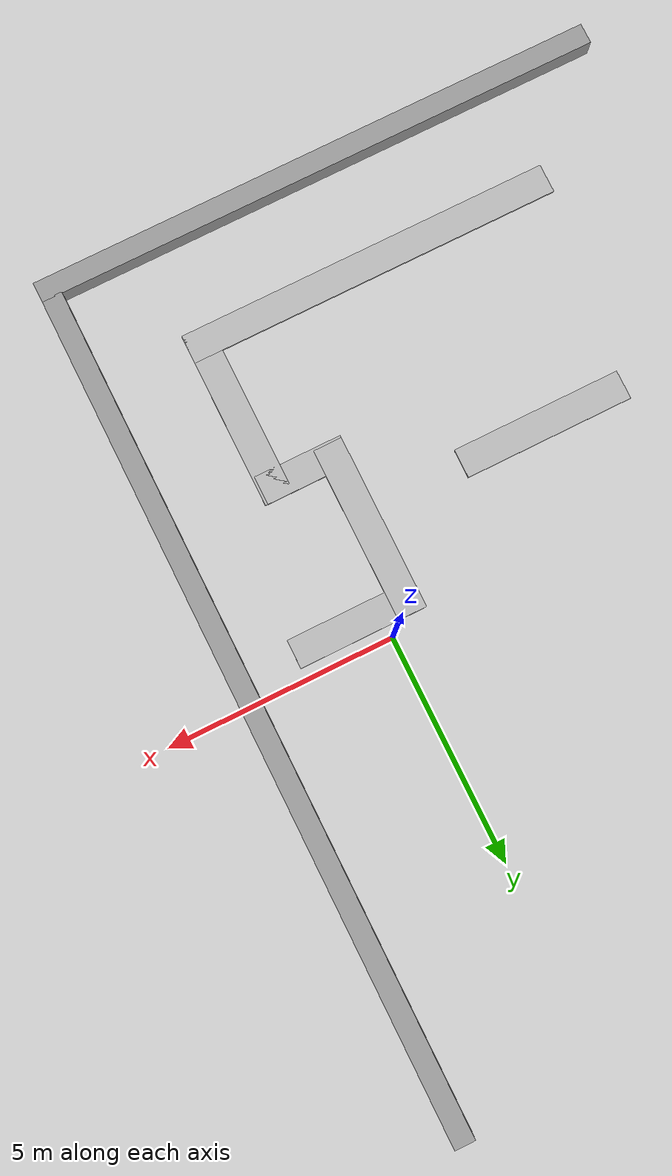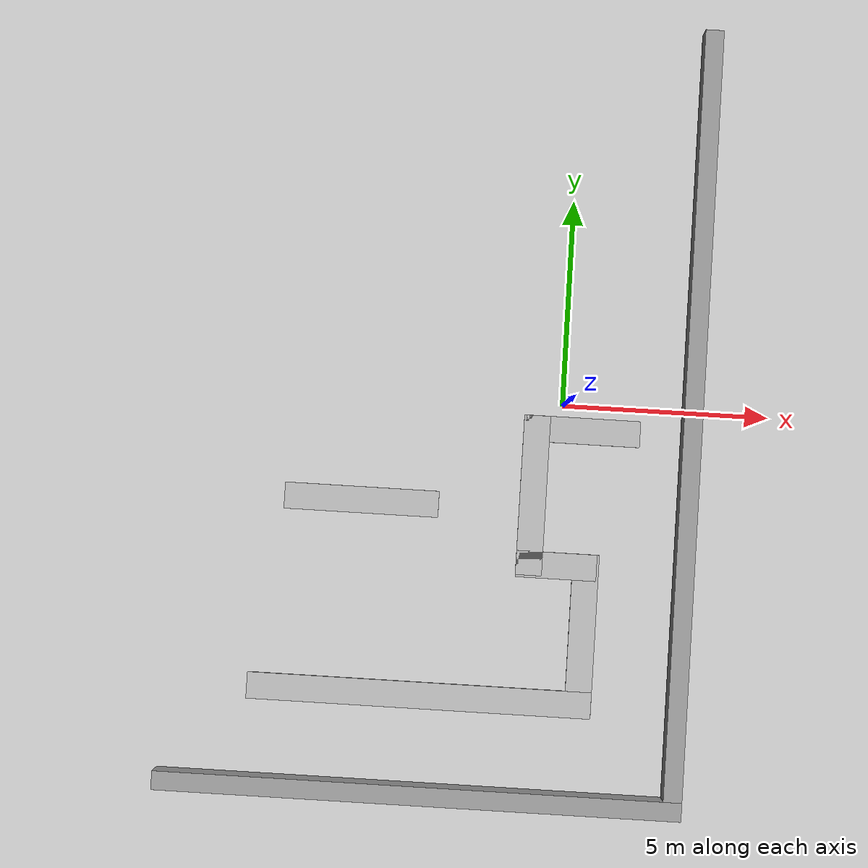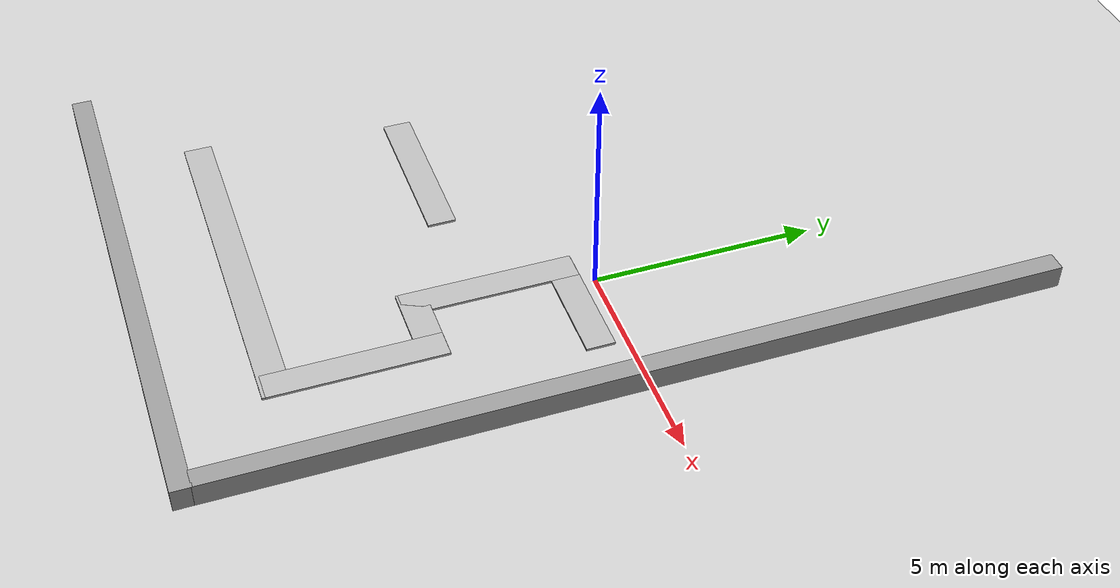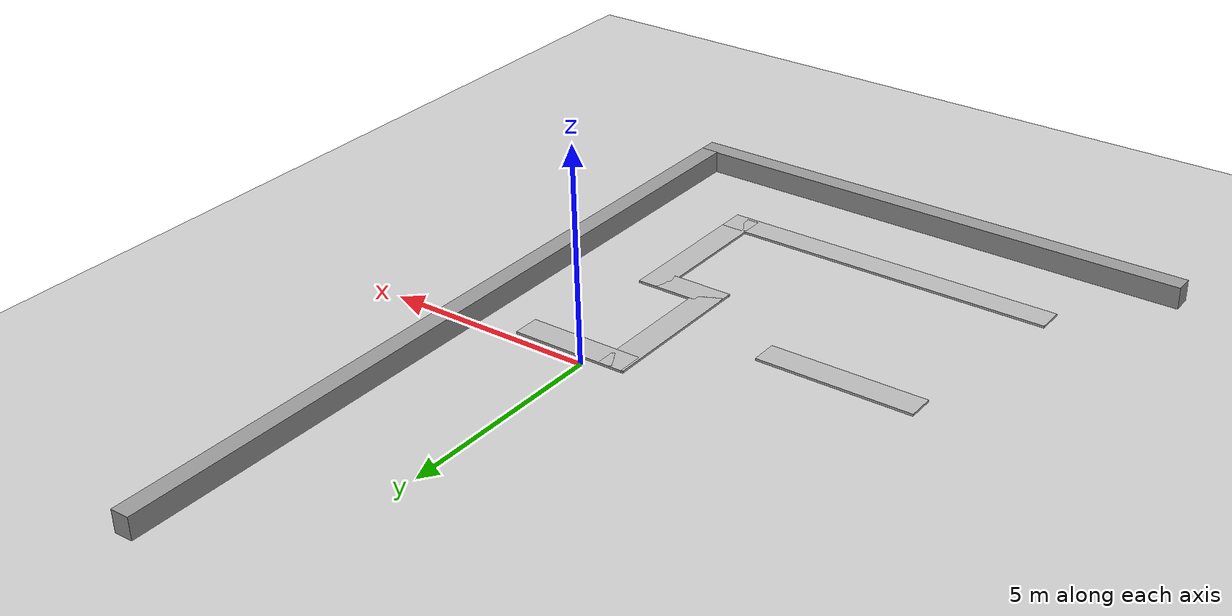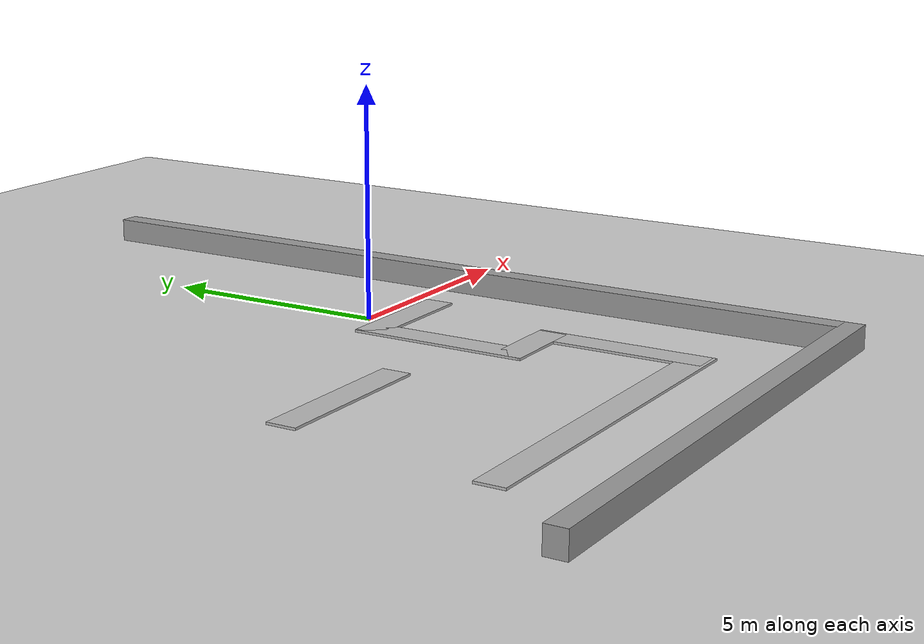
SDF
<sdf version="1.7">
 <world name="default">
  <model name="ground_plane">
   <static>1</static>
   <link name="link">
    <collision name="collision">
     <geometry><plane><normal>0 0 1</normal><size>100 100</size></plane></geometry>
     <surface>
      <contact><collide_bitmask>65535</collide_bitmask></contact>
      <friction><ode><mu>100</mu><mu2>50</mu2></ode></friction>
     </surface>
    </collision>
    <visual name="visual">
     <cast_shadows>0</cast_shadows>
     <geometry><plane><normal>0 0 1</normal><size>100 100</size></plane></geometry>
     <material>
      <script><uri>file://media/materials/scripts/gazebo.material</uri><name>Gazebo/Grey</name></script>
     </material>
    </visual>
   </link>
  </model>
  <model name="unit_box_wall_clone">
   <link name="unit_box::link">
    <inertial>
     <mass>1</mass>
     <inertia>
      <ixx>0.166667</ixx>
      <ixy>0</ixy>
      <ixz>0</ixz>
      <iyy>0.166667</iyy>
      <iyz>0</iyz>
      <izz>0.166667</izz>
     </inertia>
    </inertial>
    <visual name="visual">
     <geometry><box><size>0.446113 18.5982 1</size></box></geometry>
     <material>
      <script><name>Gazebo/Grey</name><uri>file://media/materials/scripts/gazebo.material</uri></script>
      <shader type="pixel"/>
     </material>
    </visual>
    <collision name="collision">
     <geometry><box><size>0.446113 18.5982 1</size></box></geometry>
     <surface>
      <friction>
       <ode><mu>1</mu><mu2>1</mu2><fdir1>0 0 0</fdir1><slip1>0</slip1><slip2>0</slip2></ode>
       <torsional>
        <coefficient>1</coefficient>
        <patch_radius>0</patch_radius>
        <surface_radius>0</surface_radius>
        <use_patch_radius>1</use_patch_radius>
        <ode><slip>0</slip></ode>
       </torsional>
      </friction>
      <bounce><restitution_coefficient>0</restitution_coefficient><threshold>1e+06</threshold></bounce>
      <contact>
       <collide_without_contact>0</collide_without_contact>
       <collide_without_contact_bitmask>1</collide_without_contact_bitmask>
       <collide_bitmask>1</collide_bitmask>
       <ode>
        <soft_cfm>0</soft_cfm>
        <soft_erp>0.2</soft_erp>
        <kp>1e+13</kp>
        <kd>1</kd>
        <max_vel>0.01</max_vel>
        <min_depth>0</min_depth>
       </ode>
       <bullet>
        <split_impulse>1</split_impulse>
        <split_impulse_penetration_threshold>-0.01</split_impulse_penetration_threshold>
        <soft_cfm>0</soft_cfm>
        <soft_erp>0.2</soft_erp>
        <kp>1e+13</kp>
        <kd>1</kd>
       </bullet>
      </contact>
     </surface>
    </collision>
   </link>
   <static>1</static>
   <allow_auto_disable>0</allow_auto_disable>
   <pose>3.13218 0.00569 0 0 -0 0</pose>
  </model>
  <model name="unit_box_wall_clone_0">
   <link name="unit_box::link">
    <inertial>
     <mass>1</mass>
     <inertia>
      <ixx>0.166667</ixx>
      <ixy>0</ixy>
      <ixz>0</ixz>
      <iyy>0.166667</iyy>
      <iyz>0</iyz>
      <izz>0.166667</izz>
     </inertia>
    </inertial>
    <visual name="visual">
     <geometry><box><size>0.446113 12.605 1</size></box></geometry>
     <material>
      <script><name>Gazebo/Grey</name><uri>file://media/materials/scripts/gazebo.material</uri></script>
      <shader type="pixel"/>
     </material>
    </visual>
    <collision name="collision">
     <geometry><box><size>0.446113 12.605 1</size></box></geometry>
     <surface>
      <friction>
       <ode><mu>1</mu><mu2>1</mu2><fdir1>0 0 0</fdir1><slip1>0</slip1><slip2>0</slip2></ode>
       <torsional>
        <coefficient>1</coefficient>
        <patch_radius>0</patch_radius>
        <surface_radius>0</surface_radius>
        <use_patch_radius>1</use_patch_radius>
        <ode><slip>0</slip></ode>
       </torsional>
      </friction>
      <bounce><restitution_coefficient>0</restitution_coefficient><threshold>1e+06</threshold></bounce>
      <contact>
       <collide_without_contact>0</collide_without_contact>
       <collide_without_contact_bitmask>1</collide_without_contact_bitmask>
       <collide_bitmask>1</collide_bitmask>
       <ode>
        <soft_cfm>0</soft_cfm>
        <soft_erp>0.2</soft_erp>
        <kp>1e+13</kp>
        <kd>1</kd>
        <max_vel>0.01</max_vel>
        <min_depth>0</min_depth>
       </ode>
       <bullet>
        <split_impulse>1</split_impulse>
        <split_impulse_penetration_threshold>-0.01</split_impulse_penetration_threshold>
        <soft_cfm>0</soft_cfm>
        <soft_erp>0.2</soft_erp>
        <kp>1e+13</kp>
        <kd>1</kd>
       </bullet>
      </contact>
     </surface>
    </collision>
   </link>
   <static>1</static>
   <allow_auto_disable>0</allow_auto_disable>
   <pose>-2.94746 -9.48662 0 0 0 -1.57124</pose>
  </model>
  <model name="wallx_clone_clone_clone">
   <link name="unit_box::link">
    <inertial>
     <mass>0.360824</mass>
     <inertia>
      <ixx>1.11244</ixx>
      <ixy>0</ixy>
      <ixz>0</ixz>
      <iyy>0.0643516</iyy>
      <iyz>0</iyz>
      <izz>1.11666</izz>
     </inertia>
    </inertial>
    <visual name="visual">
     <geometry><box><size>0.636041 2.7749 1</size></box></geometry>
     <material>
      <script>
       <uri>model://wallx/materials/scripts</uri>
       <uri>model://wallx/materials/textures/</uri>
       <name>sofaMat/Diffuse</name>
      </script>
      <shader type="pixel"/>
     </material>
    </visual>
    <collision name="collision">
     <geometry><box><size>0.636041 2.7749 1</size></box></geometry>
     <surface>
      <friction>
       <ode><mu>1</mu><mu2>1</mu2><fdir1>0 0 0</fdir1><slip1>0</slip1><slip2>0</slip2></ode>
       <torsional>
        <coefficient>1</coefficient>
        <patch_radius>0</patch_radius>
        <surface_radius>0</surface_radius>
        <use_patch_radius>1</use_patch_radius>
        <ode><slip>0</slip></ode>
       </torsional>
      </friction>
      <bounce><restitution_coefficient>0</restitution_coefficient><threshold>1e+06</threshold></bounce>
      <contact>
       <collide_without_contact>0</collide_without_contact>
       <collide_without_contact_bitmask>1</collide_without_contact_bitmask>
       <collide_bitmask>1</collide_bitmask>
       <ode>
        <soft_cfm>0</soft_cfm>
        <soft_erp>0.2</soft_erp>
        <kp>1e+13</kp>
        <kd>1</kd>
        <max_vel>0.01</max_vel>
        <min_depth>0</min_depth>
       </ode>
       <bullet>
        <split_impulse>1</split_impulse>
        <split_impulse_penetration_threshold>-0.01</split_impulse_penetration_threshold>
        <soft_cfm>0</soft_cfm>
        <soft_erp>0.2</soft_erp>
        <kp>1e+13</kp>
        <kd>1</kd>
       </bullet>
      </contact>
     </surface>
    </collision>
   </link>
   <static>1</static>
   <allow_auto_disable>0</allow_auto_disable>
   <pose>0.534764 -0.574694 -0.470978 0 0 -1.57156</pose>
  </model>
  <model name="wallx_clone_0_clone_clone">
   <link name="unit_box::link">
    <inertial>
     <mass>0.360824</mass>
     <inertia>
      <ixx>1.11244</ixx>
      <ixy>0</ixy>
      <ixz>0</ixz>
      <iyy>0.0643516</iyy>
      <iyz>0</iyz>
      <izz>1.11666</izz>
     </inertia>
    </inertial>
    <visual name="visual">
     <geometry><box><size>0.63604 3.87548 1</size></box></geometry>
     <material>
      <script>
       <uri>model://wallx/materials/scripts</uri>
       <uri>model://wallx/materials/textures/</uri>
       <name>sofaMat/Diffuse</name>
      </script>
      <shader type="pixel"/>
     </material>
    </visual>
    <collision name="collision">
     <geometry><box><size>0.63604 3.87548 1</size></box></geometry>
     <surface>
      <friction>
       <ode><mu>1</mu><mu2>1</mu2><fdir1>0 0 0</fdir1><slip1>0</slip1><slip2>0</slip2></ode>
       <torsional>
        <coefficient>1</coefficient>
        <patch_radius>0</patch_radius>
        <surface_radius>0</surface_radius>
        <use_patch_radius>1</use_patch_radius>
        <ode><slip>0</slip></ode>
       </torsional>
      </friction>
      <bounce><restitution_coefficient>0</restitution_coefficient><threshold>1e+06</threshold></bounce>
      <contact>
       <collide_without_contact>0</collide_without_contact>
       <collide_without_contact_bitmask>1</collide_without_contact_bitmask>
       <collide_bitmask>1</collide_bitmask>
       <ode>
        <soft_cfm>0</soft_cfm>
        <soft_erp>0.2</soft_erp>
        <kp>1e+13</kp>
        <kd>1</kd>
        <max_vel>0.01</max_vel>
        <min_depth>0</min_depth>
       </ode>
       <bullet>
        <split_impulse>1</split_impulse>
        <split_impulse_penetration_threshold>-0.01</split_impulse_penetration_threshold>
        <soft_cfm>0</soft_cfm>
        <soft_erp>0.2</soft_erp>
        <kp>1e+13</kp>
        <kd>1</kd>
       </bullet>
      </contact>
     </surface>
    </collision>
   </link>
   <static>1</static>
   <allow_auto_disable>0</allow_auto_disable>
   <pose>-0.586172 -2.19734 -0.470978 0 -0 0</pose>
  </model>
  <model name="wallx_clone_clone_clone_clone">
   <link name="unit_box::link">
    <inertial>
     <mass>0.360824</mass>
     <inertia>
      <ixx>1.11244</ixx>
      <ixy>0</ixy>
      <ixz>0</ixz>
      <iyy>0.0643516</iyy>
      <iyz>0</iyz>
      <izz>1.11666</izz>
     </inertia>
    </inertial>
    <visual name="visual">
     <geometry><box><size>0.636041 1.95542 1</size></box></geometry>
     <material>
      <script>
       <uri>model://wallx/materials/scripts</uri>
       <uri>model://wallx/materials/textures/</uri>
       <name>sofaMat/Diffuse</name>
      </script>
      <shader type="pixel"/>
     </material>
    </visual>
    <collision name="collision">
     <geometry><box><size>0.636041 1.95542 1</size></box></geometry>
     <surface>
      <friction>
       <ode><mu>1</mu><mu2>1</mu2><fdir1>0 0 0</fdir1><slip1>0</slip1><slip2>0</slip2></ode>
       <torsional>
        <coefficient>1</coefficient>
        <patch_radius>0</patch_radius>
        <surface_radius>0</surface_radius>
        <use_patch_radius>1</use_patch_radius>
        <ode><slip>0</slip></ode>
       </torsional>
      </friction>
      <bounce><restitution_coefficient>0</restitution_coefficient><threshold>1e+06</threshold></bounce>
      <contact>
       <collide_without_contact>0</collide_without_contact>
       <collide_without_contact_bitmask>1</collide_without_contact_bitmask>
       <collide_bitmask>1</collide_bitmask>
       <ode>
        <soft_cfm>0</soft_cfm>
        <soft_erp>0.2</soft_erp>
        <kp>1e+13</kp>
        <kd>1</kd>
        <max_vel>0.01</max_vel>
        <min_depth>0</min_depth>
       </ode>
       <bullet>
        <split_impulse>1</split_impulse>
        <split_impulse_penetration_threshold>-0.01</split_impulse_penetration_threshold>
        <soft_cfm>0</soft_cfm>
        <soft_erp>0.2</soft_erp>
        <kp>1e+13</kp>
        <kd>1</kd>
       </bullet>
      </contact>
     </surface>
    </collision>
   </link>
   <static>1</static>
   <allow_auto_disable>0</allow_auto_disable>
   <pose>0.07415 -3.86935 -0.470978 0 0 -1.57156</pose>
  </model>
  <model name="wallx_clone_0_clone_clone_clone">
   <link name="unit_box::link">
    <inertial>
     <mass>0.360824</mass>
     <inertia>
      <ixx>1.11244</ixx>
      <ixy>0</ixy>
      <ixz>0</ixz>
      <iyy>0.0643516</iyy>
      <iyz>0</iyz>
      <izz>1.11666</izz>
     </inertia>
    </inertial>
    <visual name="visual">
     <geometry><box><size>0.63604 3.87548 1</size></box></geometry>
     <material>
      <script>
       <uri>model://wallx/materials/scripts</uri>
       <uri>model://wallx/materials/textures/</uri>
       <name>sofaMat/Diffuse</name>
      </script>
      <shader type="pixel"/>
     </material>
    </visual>
    <collision name="collision">
     <geometry><box><size>0.63604 3.87548 1</size></box></geometry>
     <surface>
      <friction>
       <ode><mu>1</mu><mu2>1</mu2><fdir1>0 0 0</fdir1><slip1>0</slip1><slip2>0</slip2></ode>
       <torsional>
        <coefficient>1</coefficient>
        <patch_radius>0</patch_radius>
        <surface_radius>0</surface_radius>
        <use_patch_radius>1</use_patch_radius>
        <ode><slip>0</slip></ode>
       </torsional>
      </friction>
      <bounce><restitution_coefficient>0</restitution_coefficient><threshold>1e+06</threshold></bounce>
      <contact>
       <collide_without_contact>0</collide_without_contact>
       <collide_without_contact_bitmask>1</collide_without_contact_bitmask>
       <collide_bitmask>1</collide_bitmask>
       <ode>
        <soft_cfm>0</soft_cfm>
        <soft_erp>0.2</soft_erp>
        <kp>1e+13</kp>
        <kd>1</kd>
        <max_vel>0.01</max_vel>
        <min_depth>0</min_depth>
       </ode>
       <bullet>
        <split_impulse>1</split_impulse>
        <split_impulse_penetration_threshold>-0.01</split_impulse_penetration_threshold>
        <soft_cfm>0</soft_cfm>
        <soft_erp>0.2</soft_erp>
        <kp>1e+13</kp>
        <kd>1</kd>
       </bullet>
      </contact>
     </surface>
    </collision>
   </link>
   <static>1</static>
   <allow_auto_disable>0</allow_auto_disable>
   <pose>0.786646 -5.4928 -0.470978 0 -0 0</pose>
  </model>
  <model name="wallx_clone_clone_0">
   <link name="unit_box::link">
    <inertial>
     <mass>0.360824</mass>
     <inertia>
      <ixx>1.11244</ixx>
      <ixy>0</ixy>
      <ixz>0</ixz>
      <iyy>0.0643516</iyy>
      <iyz>0</iyz>
      <izz>1.11666</izz>
     </inertia>
    </inertial>
    <visual name="visual">
     <geometry><box><size>0.636041 8.31934 1</size></box></geometry>
     <material>
      <script>
       <uri>model://wallx/materials/scripts</uri>
       <uri>model://wallx/materials/textures/</uri>
       <name>sofaMat/Diffuse</name>
      </script>
      <shader type="pixel"/>
     </material>
    </visual>
    <collision name="collision">
     <geometry><box><size>0.636041 8.31934 1</size></box></geometry>
     <surface>
      <friction>
       <ode><mu>1</mu><mu2>1</mu2><fdir1>0 0 0</fdir1><slip1>0</slip1><slip2>0</slip2></ode>
       <torsional>
        <coefficient>1</coefficient>
        <patch_radius>0</patch_radius>
        <surface_radius>0</surface_radius>
        <use_patch_radius>1</use_patch_radius>
        <ode><slip>0</slip></ode>
       </torsional>
      </friction>
      <bounce><restitution_coefficient>0</restitution_coefficient><threshold>1e+06</threshold></bounce>
      <contact>
       <collide_without_contact>0</collide_without_contact>
       <collide_without_contact_bitmask>1</collide_without_contact_bitmask>
       <collide_bitmask>1</collide_bitmask>
       <ode>
        <soft_cfm>0</soft_cfm>
        <soft_erp>0.2</soft_erp>
        <kp>1e+13</kp>
        <kd>1</kd>
        <max_vel>0.01</max_vel>
        <min_depth>0</min_depth>
       </ode>
       <bullet>
        <split_impulse>1</split_impulse>
        <split_impulse_penetration_threshold>-0.01</split_impulse_penetration_threshold>
        <soft_cfm>0</soft_cfm>
        <soft_erp>0.2</soft_erp>
        <kp>1e+13</kp>
        <kd>1</kd>
       </bullet>
      </contact>
     </surface>
    </collision>
   </link>
   <static>1</static>
   <allow_auto_disable>0</allow_auto_disable>
   <pose>-3.05633 -7.18123 -0.470978 0 0 -1.57156</pose>
  </model>
  <model name="wallx_clone_clone_clone_clone_0">
   <link name="unit_box::link">
    <inertial>
     <mass>0.360824</mass>
     <inertia>
      <ixx>1.11244</ixx>
      <ixy>0</ixy>
      <ixz>0</ixz>
      <iyy>0.0643516</iyy>
      <iyz>0</iyz>
      <izz>1.11666</izz>
     </inertia>
    </inertial>
    <visual name="visual">
     <geometry><box><size>0.636041 3.74012 1</size></box></geometry>
     <material>
      <script>
       <uri>model://wallx/materials/scripts</uri>
       <uri>model://wallx/materials/textures/</uri>
       <name>sofaMat/Diffuse</name>
      </script>
      <shader type="pixel"/>
     </material>
    </visual>
    <collision name="collision">
     <geometry><box><size>0.636041 3.74012 1</size></box></geometry>
     <surface>
      <friction>
       <ode><mu>1</mu><mu2>1</mu2><fdir1>0 0 0</fdir1><slip1>0</slip1><slip2>0</slip2></ode>
       <torsional>
        <coefficient>1</coefficient>
        <patch_radius>0</patch_radius>
        <surface_radius>0</surface_radius>
        <use_patch_radius>1</use_patch_radius>
        <ode><slip>0</slip></ode>
       </torsional>
      </friction>
      <bounce><restitution_coefficient>0</restitution_coefficient><threshold>1e+06</threshold></bounce>
      <contact>
       <collide_without_contact>0</collide_without_contact>
       <collide_without_contact_bitmask>1</collide_without_contact_bitmask>
       <collide_bitmask>1</collide_bitmask>
       <ode>
        <soft_cfm>0</soft_cfm>
        <soft_erp>0.2</soft_erp>
        <kp>1e+13</kp>
        <kd>1</kd>
        <max_vel>0.01</max_vel>
        <min_depth>0</min_depth>
       </ode>
       <bullet>
        <split_impulse>1</split_impulse>
        <split_impulse_penetration_threshold>-0.01</split_impulse_penetration_threshold>
        <soft_cfm>0</soft_cfm>
        <soft_erp>0.2</soft_erp>
        <kp>1e+13</kp>
        <kd>1</kd>
       </bullet>
      </contact>
     </surface>
    </collision>
   </link>
   <static>1</static>
   <allow_auto_disable>0</allow_auto_disable>
   <pose>-4.72872 -2.55677 -0.470978 0 0 -1.57156</pose>
  </model>
 </world>
</sdf>
